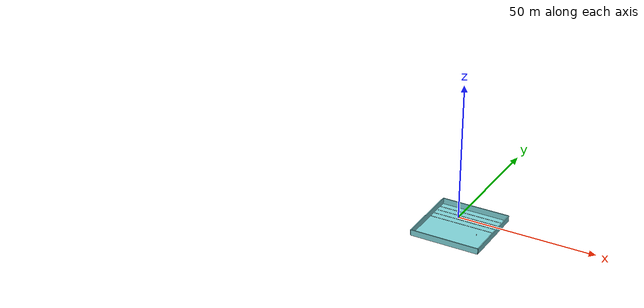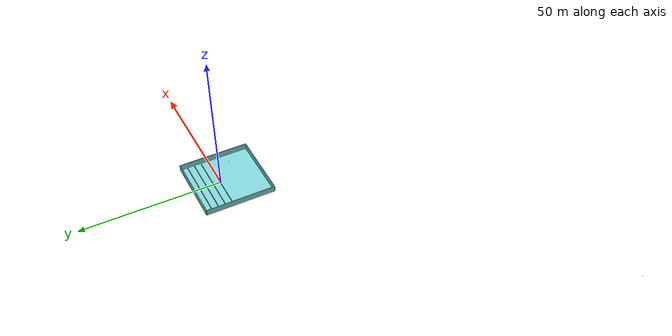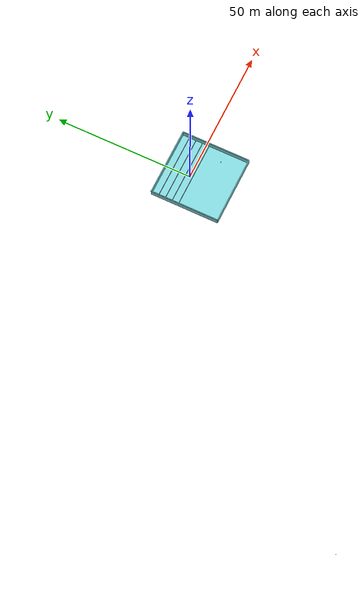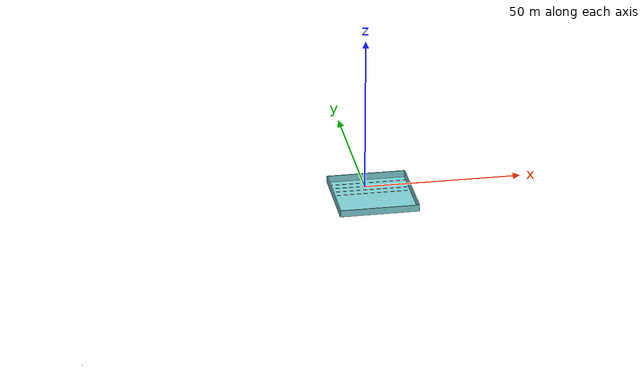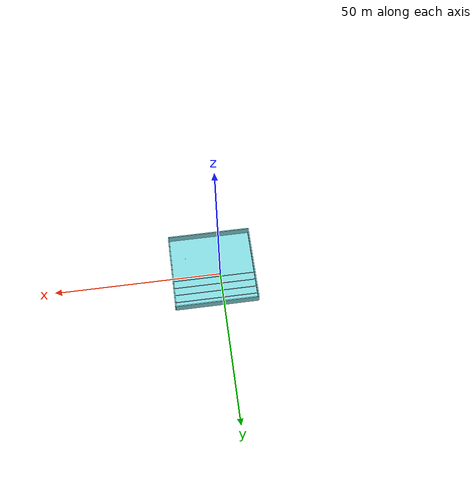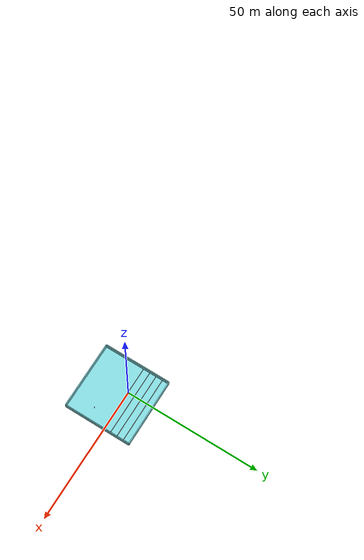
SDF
<sdf version="1.7">
 <world name="default">
  <plugin filename="gz-sim-air-pressure-system" name="gz::sim::systems::AirPressure"/>
  <plugin filename="gz-sim-imu-system" name="gz::sim::systems::Imu"/>
  <plugin filename="gz-sim-buoyancy-system" name="gz::sim::systems::Buoyancy">
   <graded_buoyancy>
    <default_density>1000</default_density>
    <density_change><above_depth>0</above_depth><density>1</density></density_change>
   </graded_buoyancy>
  </plugin>
  <plugin filename="gz-sim-physics-system" name="gz::sim::systems::Physics"/>
  <plugin filename="gz-sim-sensors-system" name="gz::sim::systems::Sensors">
   <render_engine>ogre2</render_engine>
  </plugin>
  <plugin filename="gz-sim-user-commands-system" name="gz::sim::systems::UserCommands"/>
  <plugin filename="gz-sim-scene-broadcaster-system" name="gz::sim::systems::SceneBroadcaster"/>
  <plugin filename="gz-sim-apply-link-wrench-system" name="gz::sim::systems::ApplyLinkWrench"/>
  <model name="test_torpedo_world">
   <pose>-100 -100 -0.5 0 1.5708 0</pose>
   <link name="link">
    <inertial><mass>0.216</mass><inertia><ixx>0.0003</ixx><iyy>0.0003</iyy><izz>0.0003</izz></inertia></inertial>
    <collision name="collision"><geometry><box><size>0.03 0.03 0.24</size></box></geometry></collision>
    <visual name="body">
     <geometry><cylinder><radius>0.015</radius><length>0.24</length></cylinder></geometry>
     <material><ambient>0.8 0.8 0.8 1</ambient><diffuse>0.8 0.8 0.8 1</diffuse></material>
    </visual>
    <visual name="nose">
     <pose>0 0 0.14 0 0 0</pose>
     <geometry><cone><radius>0.015</radius><length>0.04</length></cone></geometry>
     <material><ambient>1 0 0 1</ambient><diffuse>1 0 0 1</diffuse></material>
    </visual>
    <visual name="fin_x_pos">
     <pose>0.025 0 -0.095 0 0 0</pose>
     <geometry><box><size>0.035 0.004 0.055</size></box></geometry>
     <material><ambient>0.25 0.25 0.25 1</ambient><diffuse>0.25 0.25 0.25 1</diffuse></material>
    </visual>
    <visual name="fin_x_neg">
     <pose>-0.025 0 -0.095 0 0 0</pose>
     <geometry><box><size>0.035 0.004 0.055</size></box></geometry>
     <material><ambient>0.25 0.25 0.25 1</ambient><diffuse>0.25 0.25 0.25 1</diffuse></material>
    </visual>
    <visual name="fin_y_pos">
     <pose>0 0.025 -0.095 0 0 0</pose>
     <geometry><box><size>0.004 0.035 0.055</size></box></geometry>
     <material><ambient>0.25 0.25 0.25 1</ambient><diffuse>0.25 0.25 0.25 1</diffuse></material>
    </visual>
    <visual name="fin_y_neg">
     <pose>0 -0.025 -0.095 0 0 0</pose>
     <geometry><box><size>0.004 0.035 0.055</size></box></geometry>
     <material><ambient>0.25 0.25 0.25 1</ambient><diffuse>0.25 0.25 0.25 1</diffuse></material>
    </visual>
   </link>
   <plugin filename="gz-sim-hydrodynamics-system" name="gz::sim::systems::Hydrodynamics">
    <link_name>link</link_name>
    <water_density>1000</water_density>
    <xU>-0.05</xU>
    <xUabsU>-0.15</xUabsU>
    <yV>-0.5</yV>
    <yVabsV>-1.0</yVabsV>
    <zW>-0.5</zW>
    <zWabsW>-1.0</zWabsW>
    <kP>-0.05</kP>
    <mQ>-0.05</mQ>
    <nR>-0.05</nR>
   </plugin>
  </model>
  <light name="sun" type="directional">
   <cast_shadows>0</cast_shadows>
   <pose>0 0 10 0 -0 0</pose>
   <diffuse>0.8 0.8 0.8 1</diffuse>
   <specular>0.2 0.2 0.2 1</specular>
   <attenuation>
    <range>1000</range>
    <constant>0.9</constant>
    <linear>0.01</linear>
    <quadratic>0.001</quadratic>
   </attenuation>
   <direction>-0.5 0.1 -0.9</direction>
   <spot><inner_angle>0</inner_angle><outer_angle>0</outer_angle><falloff>0</falloff></spot>
  </light>
  <gravity>0 0 -9.8</gravity>
  <magnetic_field>6e-06 2.3e-05 -4.2e-05</magnetic_field>
  <atmosphere type="adiabatic"/>
  <physics type="ode">
   <max_step_size>0.001</max_step_size>
   <real_time_factor>1</real_time_factor>
   <real_time_update_rate>1000</real_time_update_rate>
  </physics>
  <scene><ambient>0.4 0.4 0.4 1</ambient><background>0.7 0.7 0.7 1</background><shadows>1</shadows></scene>
  <spherical_coordinates>
   <surface_model>EARTH_WGS84</surface_model>
   <latitude_deg>0</latitude_deg>
   <longitude_deg>0</longitude_deg>
   <elevation>0</elevation>
   <heading_deg>0</heading_deg>
  </spherical_coordinates>
  <model name="pool_floor">
   <static>1</static>
   <pose>2 -3 0 0 0 0</pose>
   <link name="pool_floor_link">
    <collision name="pool_floor_collision">
     <geometry><box><size>25 25 0.1</size></box></geometry>
     <pose>0 0 -2.18 0 0 0</pose>
     <surface><friction><ode><mu>0.5</mu><mu2>0.5</mu2></ode></friction></surface>
    </collision>
    <visual name="pool_floor_visual">
     <geometry><box><size>25 25 0.1</size></box></geometry>
     <pose>0 0 -2.18 0 0 0</pose>
     <material>
      <ambient>0.5 0.83 0.85 1</ambient>
      <diffuse>0.5 0.83 0.85 1</diffuse>
      <specular>0.1 0.1 0.1 1</specular>
     </material>
    </visual>
   </link>
  </model>
  <model name="wall_north">
   <static>1</static>
   <pose>2 9.5 -1.065 0 0 0</pose>
   <link name="wall_north_link">
    <collision name="wall_north_collision">
     <geometry><box><size>25 0.3 2.13</size></box></geometry>
     <surface><friction><ode><mu>0.5</mu><mu2>0.5</mu2></ode></friction></surface>
    </collision>
    <visual name="wall_north_visual">
     <geometry><box><size>25 0.3 2.13</size></box></geometry>
     <material>
      <ambient>0.5 0.83 0.85 1</ambient>
      <diffuse>0.5 0.83 0.85 1</diffuse>
      <specular>0.1 0.1 0.1 1</specular>
     </material>
    </visual>
   </link>
  </model>
  <model name="wall_south">
   <static>1</static>
   <pose>2 -15.5 -1.065 0 0 0</pose>
   <link name="wall_south_link">
    <collision name="wall_south_collision">
     <geometry><box><size>25 0.3 2.13</size></box></geometry>
     <surface><friction><ode><mu>0.5</mu><mu2>0.5</mu2></ode></friction></surface>
    </collision>
    <visual name="wall_south_visual">
     <geometry><box><size>25 0.3 2.13</size></box></geometry>
     <material>
      <ambient>0.5 0.83 0.85 1</ambient>
      <diffuse>0.5 0.83 0.85 1</diffuse>
      <specular>0.1 0.1 0.1 1</specular>
     </material>
    </visual>
   </link>
  </model>
  <model name="wall_west">
   <static>1</static>
   <pose>-10.5 -3 -1.065 0 0 0</pose>
   <link name="wall_west_link">
    <collision name="wall_west_collision">
     <geometry><box><size>0.3 25 2.13</size></box></geometry>
     <surface><friction><ode><mu>0.5</mu><mu2>0.5</mu2></ode></friction></surface>
    </collision>
    <visual name="wall_west_visual">
     <geometry><box><size>0.3 25 2.13</size></box></geometry>
     <material>
      <ambient>0.5 0.83 0.85 1</ambient>
      <diffuse>0.5 0.83 0.85 1</diffuse>
      <specular>0.1 0.1 0.1 1</specular>
     </material>
    </visual>
   </link>
  </model>
  <model name="wall_east">
   <static>1</static>
   <pose>14.5 -3 -1.065 0 0 0</pose>
   <link name="wall_east_link">
    <collision name="wall_east_collision">
     <geometry><box><size>0.3 25 2.13</size></box></geometry>
     <surface><friction><ode><mu>0.5</mu><mu2>0.5</mu2></ode></friction></surface>
    </collision>
    <visual name="wall_east_visual">
     <geometry><box><size>0.3 25 2.13</size></box></geometry>
     <material>
      <ambient>0.5 0.83 0.85 1</ambient>
      <diffuse>0.5 0.83 0.85 1</diffuse>
      <specular>0.1 0.1 0.1 1</specular>
     </material>
    </visual>
   </link>
  </model>
  <model name="lane_marker_1">
   <static>1</static>
   <pose>2 7 -2.134 0 0 0</pose>
   <link name="lane_marker_1_link">
    <visual name="lane_marker_1_visual">
     <geometry><box><size>24.4 0.2 0.01</size></box></geometry>
     <material>
      <ambient>0.4 0.4 0.4 1</ambient>
      <diffuse>0.4 0.4 0.4 1</diffuse>
      <specular>0.1 0.1 0.1 1</specular>
     </material>
    </visual>
   </link>
  </model>
  <model name="lane_marker_2">
   <static>1</static>
   <pose>2 4.5 -2.134 0 0 0</pose>
   <link name="lane_marker_2_link">
    <visual name="lane_marker_2_visual">
     <geometry><box><size>24.4 0.2 0.01</size></box></geometry>
     <material>
      <ambient>0.4 0.4 0.4 1</ambient>
      <diffuse>0.4 0.4 0.4 1</diffuse>
      <specular>0.1 0.1 0.1 1</specular>
     </material>
    </visual>
   </link>
  </model>
  <model name="lane_marker_3">
   <static>1</static>
   <pose>2 2 -2.134 0 0 0</pose>
   <link name="lane_marker_3_link">
    <visual name="lane_marker_3_visual">
     <geometry><box><size>24.4 0.2 0.01</size></box></geometry>
     <material>
      <ambient>0.4 0.4 0.4 1</ambient>
      <diffuse>0.4 0.4 0.4 1</diffuse>
      <specular>0.1 0.1 0.1 1</specular>
     </material>
    </visual>
   </link>
  </model>
  <model name="lane_marker_4">
   <static>1</static>
   <pose>2 -0.5 -2.134 0 0 0</pose>
   <link name="lane_marker_4_link">
    <visual name="lane_marker_4_visual">
     <geometry><box><size>24.4 0.2 0.01</size></box></geometry>
     <material>
      <ambient>0.4 0.4 0.4 1</ambient>
      <diffuse>0.4 0.4 0.4 1</diffuse>
      <specular>0.1 0.1 0.1 1</specular>
     </material>
    </visual>
   </link>
  </model>
  <include>
   <uri>model://robosub_gate_leg</uri>
   <name>robosub_gate_leg</name>
   <pose>10 -7 -0.5 0 0 0</pose>
  </include>
 </world>
</sdf>

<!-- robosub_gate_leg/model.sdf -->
<sdf version="1.6">
	<model name="robosub_gate_leg">
		<static>true</static>
    	<pose>0 0 0 0 0 0</pose>
		<link name="robosub_gate_leg">
			<pose>0 0 0 0 0 0</pose>
			<collision name="robosub_gate_leg_col">
				<pose>0 0 0 0 0 0</pose>
				<geometry>
					<mesh>
						<uri>model://robosub_gate_leg/meshes/gate_leg.dae</uri>
					</mesh>
				</geometry>
			</collision>
			<visual name="robosub_gate_leg_vis">
				<pose>0 0 0 0 0 0</pose>
				<geometry>
					<mesh>
						<uri>model://robosub_gate_leg/meshes/gate_leg.dae</uri>
					</mesh>
				</geometry>
			</visual>

		</link>
	</model>
</sdf>
